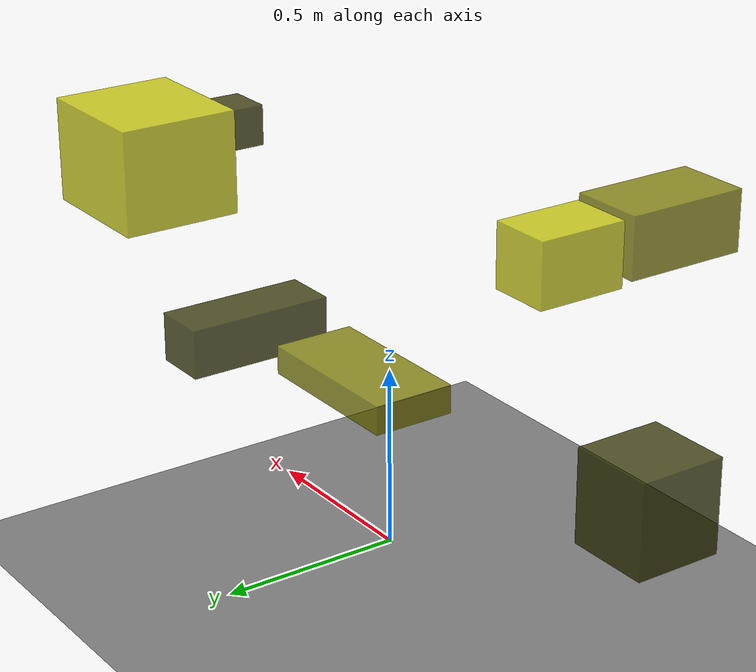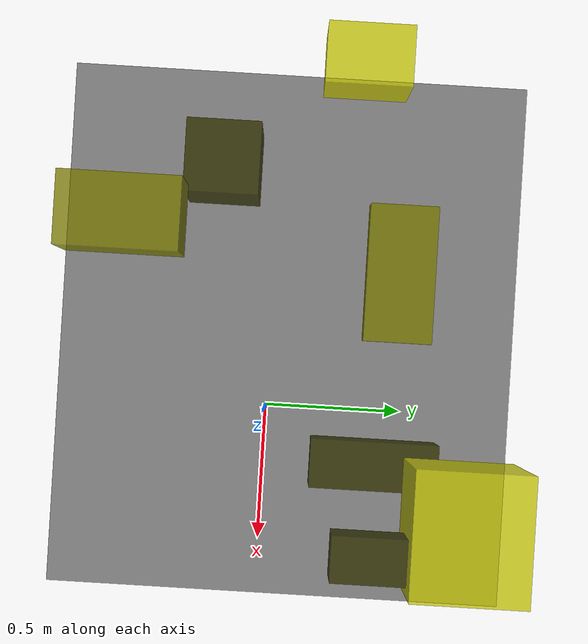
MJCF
<?xml version="1.0"?>
<mujoco model="obstacle_scene">
  <compiler angle="radian" coordinate="local"/>
  <option timestep="0.001" gravity="0 0 -9.81"/>

  <asset>
    <material name="obstacle_mat" rgba="0.8 0.8 0.0 0.8"/>
    <material name="ground_mat" rgba="0.5 0.5 0.5 1"/>
  </asset>

  <worldbody>
    <!-- Ground plane -->
    <geom name="ground" type="plane" size="3 3 0.1" material="ground_mat"/>

    <!-- Obstacles -->
    <body name="obstacle_0" pos="0.314404 0.336844 1.133553">
      <geom name="obs_0" type="box" size="0.060009 0.128295 0.052172" rgba="0.2 0.2 0.0 0.8"/>
    </body>
    <body name="obstacle_1" pos="-0.551438 -0.405163 0.987114">
      <geom name="obs_1" type="box" size="0.100863 0.168042 0.081220" rgba="0.5 0.5 0.0 0.8"/>
    </body>
    <body name="obstacle_2" pos="-0.949359 0.230770 1.172980">
      <geom name="obs_2" type="box" size="0.076174 0.108180 0.076118" rgba="0.8 0.8 0.0 0.8"/>
    </body>
    <body name="obstacle_3" pos="-0.812613 -0.174983 0.415584">
      <geom name="obs_3" type="box" size="0.117411 0.120691 0.128157" rgba="0.2 0.2 0.0 0.8"/>
    </body>
    <body name="obstacle_4" pos="-0.451551 0.391332 0.745709">
      <geom name="obs_4" type="box" size="0.203389 0.100705 0.035055" rgba="0.5 0.5 0.0 0.8"/>
    </body>
    <body name="obstacle_5" pos="0.231428 0.551832 1.126178">
      <geom name="obs_5" type="box" size="0.165592 0.149718 0.129834" rgba="0.8 0.8 0.0 0.8"/>
    </body>
    <body name="obstacle_6" pos="0.128212 0.349883 0.658435">
      <geom name="obs_6" type="box" size="0.073125 0.192870 0.063919" rgba="0.2 0.2 0.0 0.8"/>
    </body>
  </worldbody>
</mujoco>
